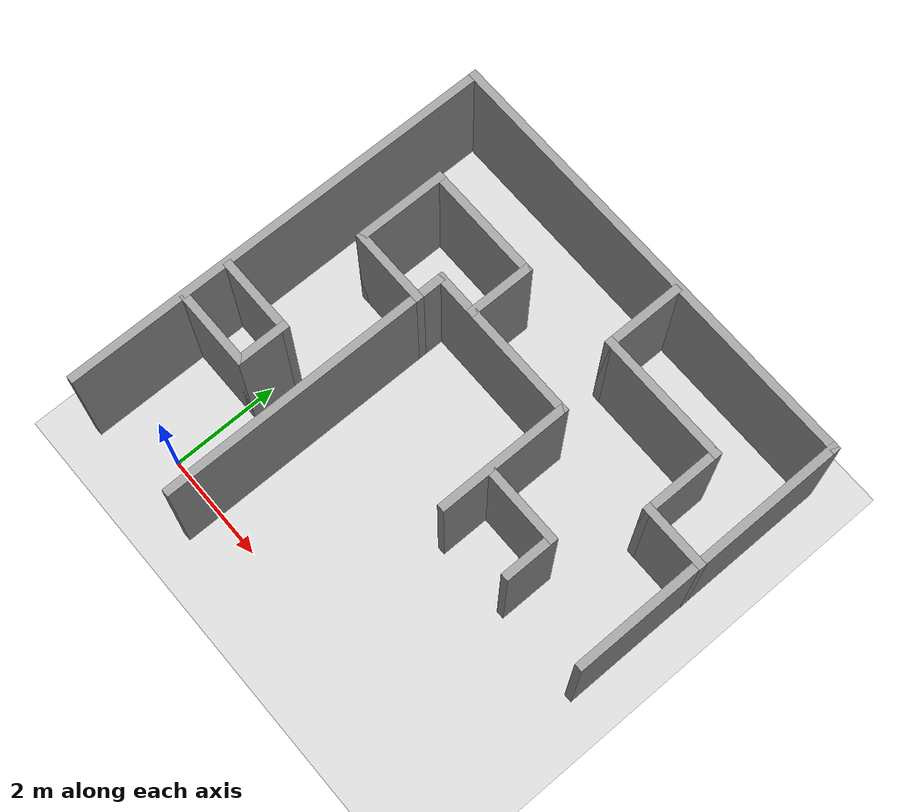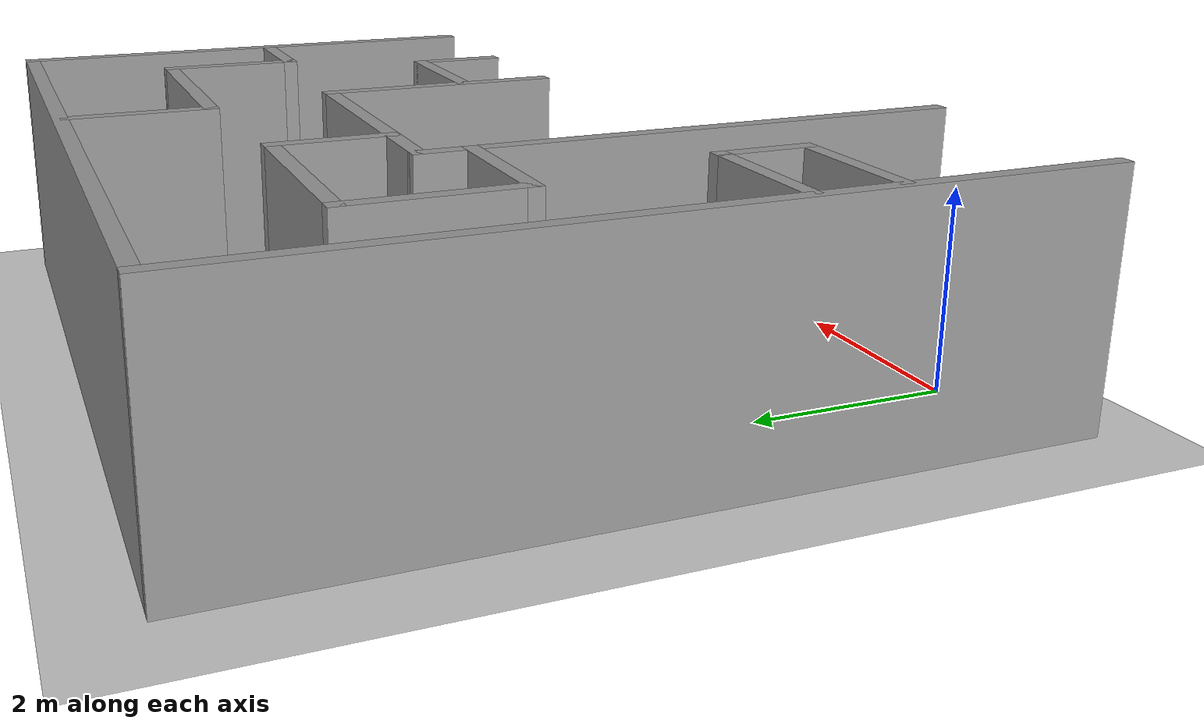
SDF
<sdf version="1.6">
 <world name="default">
  <light name="sun" type="directional">
   <pose>0 0 10 0 -0 0</pose>
   <diffuse>0.8 0.8 0.8 1</diffuse>
   <specular>0.2 0.2 0.2 1</specular>
   <attenuation>
    <range>1000</range>
    <constant>0.9</constant>
    <linear>0.01</linear>
    <quadratic>0.001</quadratic>
   </attenuation>
   <direction>-0.5 0.1 -0.9</direction>
  </light>
  <model name="ground_plane">
   <static>1</static>
   <link name="link">
    <collision name="collision">
     <geometry><plane><normal>0 0 1</normal><size>100 100</size></plane></geometry>
     <surface><friction><ode><mu>100</mu><mu2>50</mu2></ode></friction></surface>
    </collision>
    <visual name="visual">
     <cast_shadows>0</cast_shadows>
     <geometry><plane><normal>0 0 1</normal><size>100 100</size></plane></geometry>
     <material>
      <script><uri>file://media/materials/scripts/gazebo.material</uri><name>Gazebo/Grey</name></script>
     </material>
    </visual>
   </link>
  </model>
  <gravity>0 0 -9.8</gravity>
  <magnetic_field>6e-06 2.3e-05 -4.2e-05</magnetic_field>
  <atmosphere type="adiabatic"/>
  <physics name="default_physics" default="0" type="ode">
   <max_step_size>0.001</max_step_size>
   <real_time_factor>1</real_time_factor>
   <real_time_update_rate>1000</real_time_update_rate>
  </physics>
  <scene><ambient>0.4 0.4 0.4 1</ambient><background>0.7 0.7 0.7 1</background><shadows>1</shadows></scene>
  <spherical_coordinates>
   <surface_model>EARTH_WGS84</surface_model>
   <latitude_deg>0</latitude_deg>
   <longitude_deg>0</longitude_deg>
   <elevation>0</elevation>
   <heading_deg>0</heading_deg>
  </spherical_coordinates>
  <model name="corridor_maze">
   <pose>2.88998 3.46035 0 0 -0 0</pose>
   <link name="Wall_26">
    <collision name="Wall_26_Collision">
     <geometry><box><size>8.25 0.15 2.5</size></box></geometry>
     <pose>0 0 1.25 0 -0 0</pose>
    </collision>
    <visual name="Wall_26_Visual">
     <pose>0 0 1.25 0 -0 0</pose>
     <geometry><box><size>8.25 0.15 2.5</size></box></geometry>
     <material>
      <script><uri>file://media/materials/scripts/gazebo.material</uri><name>Gazebo/Grey</name></script>
      <ambient>1 1 1 1</ambient>
     </material>
     <meta><layer>0</layer></meta>
    </visual>
    <pose>-4.17684 0 0 0 -0 1.5708</pose>
   </link>
   <link name="Wall_27">
    <collision name="Wall_27_Collision">
     <geometry><box><size>8.5 0.15 2.5</size></box></geometry>
     <pose>0 0 1.25 0 -0 0</pose>
    </collision>
    <visual name="Wall_27_Visual">
     <pose>0 0 1.25 0 -0 0</pose>
     <geometry><box><size>8.5 0.15 2.5</size></box></geometry>
     <material>
      <script><uri>file://media/materials/scripts/gazebo.material</uri><name>Gazebo/Grey</name></script>
      <ambient>1 1 1 1</ambient>
     </material>
     <meta><layer>0</layer></meta>
    </visual>
    <pose>-0.001844 4.05 0 0 -0 0</pose>
   </link>
   <link name="Wall_28">
    <collision name="Wall_28_Collision">
     <geometry><box><size>5.25 0.15 2.5</size></box></geometry>
     <pose>0 0 1.25 0 -0 0</pose>
    </collision>
    <visual name="Wall_28_Visual">
     <pose>0 0 1.25 0 -0 0</pose>
     <geometry><box><size>5.25 0.15 2.5</size></box></geometry>
     <material>
      <script><uri>file://media/materials/scripts/gazebo.material</uri><name>Gazebo/Grey</name></script>
      <ambient>1 1 1 1</ambient>
     </material>
     <meta><layer>0</layer></meta>
    </visual>
    <pose>4.17316 1.5 0 0 0 -1.5708</pose>
   </link>
   <link name="Wall_30">
    <collision name="Wall_30_Collision">
     <geometry><box><size>5.5 0.15 2.5</size></box></geometry>
     <pose>0 0 1.25 0 -0 0</pose>
    </collision>
    <visual name="Wall_30_Visual">
     <pose>0 0 1.25 0 -0 0</pose>
     <geometry><box><size>5.5 0.15 2.5</size></box></geometry>
     <material>
      <script><uri>file://media/materials/scripts/gazebo.material</uri><name>Gazebo/Grey</name></script>
      <ambient>1 1 1 1</ambient>
     </material>
     <meta><layer>0</layer></meta>
    </visual>
    <pose>-1.79439 -1.35187 0 0 -0 1.5708</pose>
   </link>
   <link name="Wall_31">
    <collision name="Wall_31_Collision">
     <geometry><box><size>3 0.15 2.5</size></box></geometry>
     <pose>0 0 1.25 0 -0 0</pose>
    </collision>
    <visual name="Wall_31_Visual">
     <pose>0 0 1.25 0 -0 0</pose>
     <geometry><box><size>3 0.15 2.5</size></box></geometry>
     <material>
      <script><uri>file://media/materials/scripts/gazebo.material</uri><name>Gazebo/Grey</name></script>
      <ambient>1 1 1 1</ambient>
     </material>
     <meta><layer>0</layer></meta>
    </visual>
    <pose>-0.369391 1.32313 0 0 -0 0</pose>
   </link>
   <link name="Wall_32">
    <collision name="Wall_32_Collision">
     <geometry><box><size>2.5 0.15 2.5</size></box></geometry>
     <pose>0 0 1.25 0 -0 0</pose>
    </collision>
    <visual name="Wall_32_Visual">
     <pose>0 0 1.25 0 -0 0</pose>
     <geometry><box><size>2.5 0.15 2.5</size></box></geometry>
     <material>
      <script><uri>file://media/materials/scripts/gazebo.material</uri><name>Gazebo/Grey</name></script>
      <ambient>1 1 1 1</ambient>
     </material>
     <meta><layer>0</layer></meta>
    </visual>
    <pose>1.05561 0.148131 0 0 0 -1.5708</pose>
   </link>
   <link name="Wall_34">
    <collision name="Wall_34_Collision">
     <geometry><box><size>1.5 0.15 2.5</size></box></geometry>
     <pose>0 0 1.25 0 -0 0</pose>
    </collision>
    <visual name="Wall_34_Visual">
     <pose>0 0 1.25 0 -0 0</pose>
     <geometry><box><size>1.5 0.15 2.5</size></box></geometry>
     <material>
      <script><uri>file://media/materials/scripts/gazebo.material</uri><name>Gazebo/Grey</name></script>
      <ambient>1 1 1 1</ambient>
     </material>
     <meta><layer>0</layer></meta>
    </visual>
    <pose>-3.43245 -1.92198 0 0 -0 0</pose>
   </link>
   <link name="Wall_35">
    <collision name="Wall_35_Collision">
     <geometry><box><size>1 0.15 2.5</size></box></geometry>
     <pose>0 0 1.25 0 -0 0</pose>
    </collision>
    <visual name="Wall_35_Visual">
     <pose>0 0 1.25 0 -0 0</pose>
     <geometry><box><size>1 0.15 2.5</size></box></geometry>
     <material>
      <script><uri>file://media/materials/scripts/gazebo.material</uri><name>Gazebo/Grey</name></script>
      <ambient>1 1 1 1</ambient>
     </material>
     <meta><layer>0</layer></meta>
    </visual>
    <pose>-2.75745 -1.49698 0 0 -0 1.5708</pose>
   </link>
   <link name="Wall_36">
    <collision name="Wall_36_Collision">
     <geometry><box><size>1.5 0.15 2.5</size></box></geometry>
     <pose>0 0 1.25 0 -0 0</pose>
    </collision>
    <visual name="Wall_36_Visual">
     <pose>0 0 1.25 0 -0 0</pose>
     <geometry><box><size>1.5 0.15 2.5</size></box></geometry>
     <material>
      <script><uri>file://media/materials/scripts/gazebo.material</uri><name>Gazebo/Grey</name></script>
      <ambient>1 1 1 1</ambient>
     </material>
     <meta><layer>0</layer></meta>
    </visual>
    <pose>-3.43245 -1.07198 0 0 -0 3.14159</pose>
   </link>
   <link name="Wall_39">
    <collision name="Wall_39_Collision">
     <geometry><box><size>1.5 0.15 2.5</size></box></geometry>
     <pose>0 0 1.25 0 -0 0</pose>
    </collision>
    <visual name="Wall_39_Visual">
     <pose>0 0 1.25 0 -0 0</pose>
     <geometry><box><size>1.5 0.15 2.5</size></box></geometry>
     <material>
      <script><uri>file://media/materials/scripts/gazebo.material</uri><name>Gazebo/Grey</name></script>
      <ambient>1 1 1 1</ambient>
     </material>
     <meta><layer>0</layer></meta>
    </visual>
    <pose>-2.46939 0.830558 0 0 -0 3.14159</pose>
   </link>
   <link name="Wall_40">
    <collision name="Wall_40_Collision">
     <geometry><box><size>1.75 0.15 2.5</size></box></geometry>
     <pose>0 0 1.25 0 -0 0</pose>
    </collision>
    <visual name="Wall_40_Visual">
     <pose>0 0 1.25 0 -0 0</pose>
     <geometry><box><size>1.75 0.15 2.5</size></box></geometry>
     <material>
      <script><uri>file://media/materials/scripts/gazebo.material</uri><name>Gazebo/Grey</name></script>
      <ambient>1 1 1 1</ambient>
     </material>
     <meta><layer>0</layer></meta>
    </visual>
    <pose>-3.14439 1.63056 0 0 -0 1.5708</pose>
   </link>
   <link name="Wall_41">
    <collision name="Wall_41_Collision">
     <geometry><box><size>2.25 0.15 2.5</size></box></geometry>
     <pose>0 0 1.25 0 -0 0</pose>
    </collision>
    <visual name="Wall_41_Visual">
     <pose>0 0 1.25 0 -0 0</pose>
     <geometry><box><size>2.25 0.15 2.5</size></box></geometry>
     <material>
      <script><uri>file://media/materials/scripts/gazebo.material</uri><name>Gazebo/Grey</name></script>
      <ambient>1 1 1 1</ambient>
     </material>
     <meta><layer>0</layer></meta>
    </visual>
    <pose>-2.09439 2.43056 0 0 -0 0</pose>
   </link>
   <link name="Wall_42">
    <collision name="Wall_42_Collision">
     <geometry><box><size>1.25 0.15 2.5</size></box></geometry>
     <pose>0 0 1.25 0 -0 0</pose>
    </collision>
    <visual name="Wall_42_Visual">
     <pose>0 0 1.25 0 -0 0</pose>
     <geometry><box><size>1.25 0.15 2.5</size></box></geometry>
     <material>
      <script><uri>file://media/materials/scripts/gazebo.material</uri><name>Gazebo/Grey</name></script>
      <ambient>1 1 1 1</ambient>
     </material>
     <meta><layer>0</layer></meta>
    </visual>
    <pose>-1.04439 1.88056 0 0 0 -1.5708</pose>
   </link>
   <link name="Wall_44">
    <collision name="Wall_44_Collision">
     <geometry><box><size>1.5 0.15 2.5</size></box></geometry>
     <pose>0 0 1.25 0 -0 0</pose>
    </collision>
    <visual name="Wall_44_Visual">
     <pose>0 0 1.25 0 -0 0</pose>
     <geometry><box><size>1.5 0.15 2.5</size></box></geometry>
     <material>
      <script><uri>file://media/materials/scripts/gazebo.material</uri><name>Gazebo/Grey</name></script>
      <ambient>1 1 1 1</ambient>
     </material>
     <meta><layer>0</layer></meta>
    </visual>
    <pose>0.726845 3.30132 0 0 0 -1.5708</pose>
   </link>
   <link name="Wall_45">
    <collision name="Wall_45_Collision">
     <geometry><box><size>2.5 0.15 2.5</size></box></geometry>
     <pose>0 0 1.25 0 -0 0</pose>
    </collision>
    <visual name="Wall_45_Visual">
     <pose>0 0 1.25 0 -0 0</pose>
     <geometry><box><size>2.5 0.15 2.5</size></box></geometry>
     <material>
      <script><uri>file://media/materials/scripts/gazebo.material</uri><name>Gazebo/Grey</name></script>
      <ambient>1 1 1 1</ambient>
     </material>
     <meta><layer>0</layer></meta>
    </visual>
    <pose>1.90185 2.62632 0 0 -0 0</pose>
   </link>
   <link name="Wall_46">
    <collision name="Wall_46_Collision">
     <geometry><box><size>1.5 0.15 2.5</size></box></geometry>
     <pose>0 0 1.25 0 -0 0</pose>
    </collision>
    <visual name="Wall_46_Visual">
     <pose>0 0 1.25 0 -0 0</pose>
     <geometry><box><size>1.5 0.15 2.5</size></box></geometry>
     <material>
      <script><uri>file://media/materials/scripts/gazebo.material</uri><name>Gazebo/Grey</name></script>
      <ambient>1 1 1 1</ambient>
     </material>
     <meta><layer>0</layer></meta>
    </visual>
    <pose>3.07685 1.95132 0 0 0 -1.5708</pose>
   </link>
   <link name="Wall_47">
    <collision name="Wall_47_Collision">
     <geometry><box><size>1.25 0.15 2.5</size></box></geometry>
     <pose>0 0 1.25 0 -0 0</pose>
    </collision>
    <visual name="Wall_47_Visual">
     <pose>0 0 1.25 0 -0 0</pose>
     <geometry><box><size>1.25 0.15 2.5</size></box></geometry>
     <material>
      <script><uri>file://media/materials/scripts/gazebo.material</uri><name>Gazebo/Grey</name></script>
      <ambient>1 1 1 1</ambient>
     </material>
     <meta><layer>0</layer></meta>
    </visual>
    <pose>3.62684 1.27632 0 0 -0 0</pose>
   </link>
   <link name="Wall_49">
    <collision name="Wall_49_Collision">
     <geometry><box><size>1.5 0.15 2.5</size></box></geometry>
     <pose>0 0 1.25 0 -0 0</pose>
    </collision>
    <visual name="Wall_49_Visual">
     <pose>0 0 1.25 0 -0 0</pose>
     <geometry><box><size>1.5 0.15 2.5</size></box></geometry>
     <material>
      <script><uri>file://media/materials/scripts/gazebo.material</uri><name>Gazebo/Grey</name></script>
      <ambient>1 1 1 1</ambient>
     </material>
     <meta><layer>0</layer></meta>
    </visual>
    <pose>1.79506 -0.140927 0 0 -0 0</pose>
   </link>
   <link name="Wall_50">
    <collision name="Wall_50_Collision">
     <geometry><box><size>1 0.15 2.5</size></box></geometry>
     <pose>0 0 1.25 0 -0 0</pose>
    </collision>
    <visual name="Wall_50_Visual">
     <pose>0 0 1.25 0 -0 0</pose>
     <geometry><box><size>1 0.15 2.5</size></box></geometry>
     <material>
      <script><uri>file://media/materials/scripts/gazebo.material</uri><name>Gazebo/Grey</name></script>
      <ambient>1 1 1 1</ambient>
     </material>
     <meta><layer>0</layer></meta>
    </visual>
    <pose>2.47006 -0.565927 0 0 0 -1.5708</pose>
   </link>
   <static>1</static>
  </model>
 </world>
</sdf>
